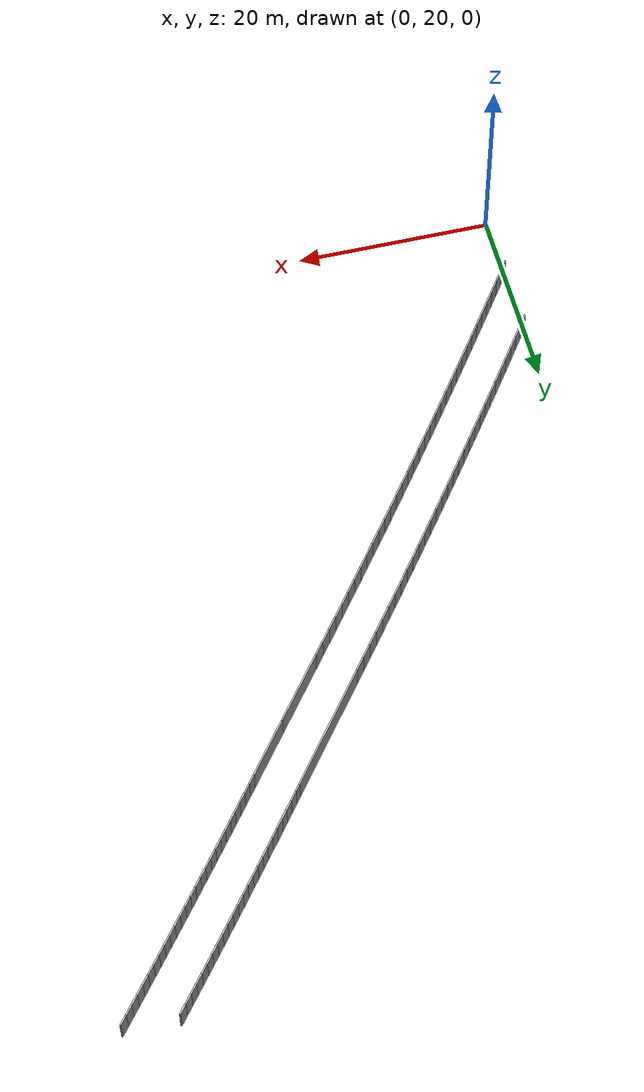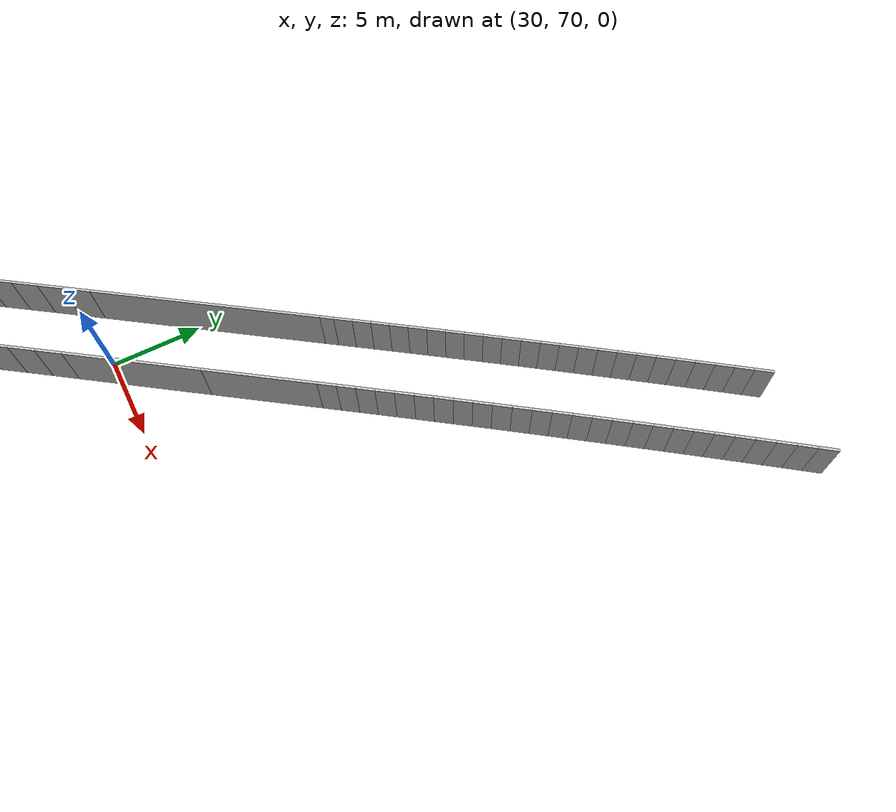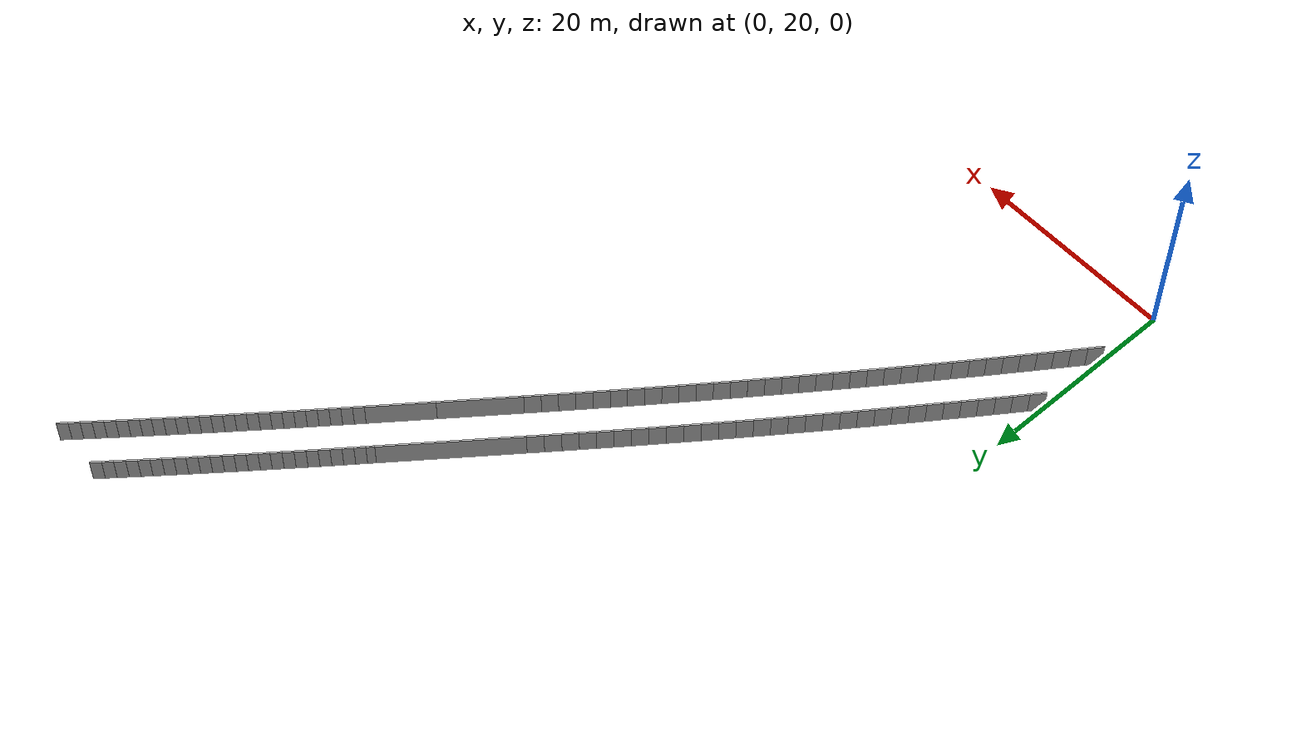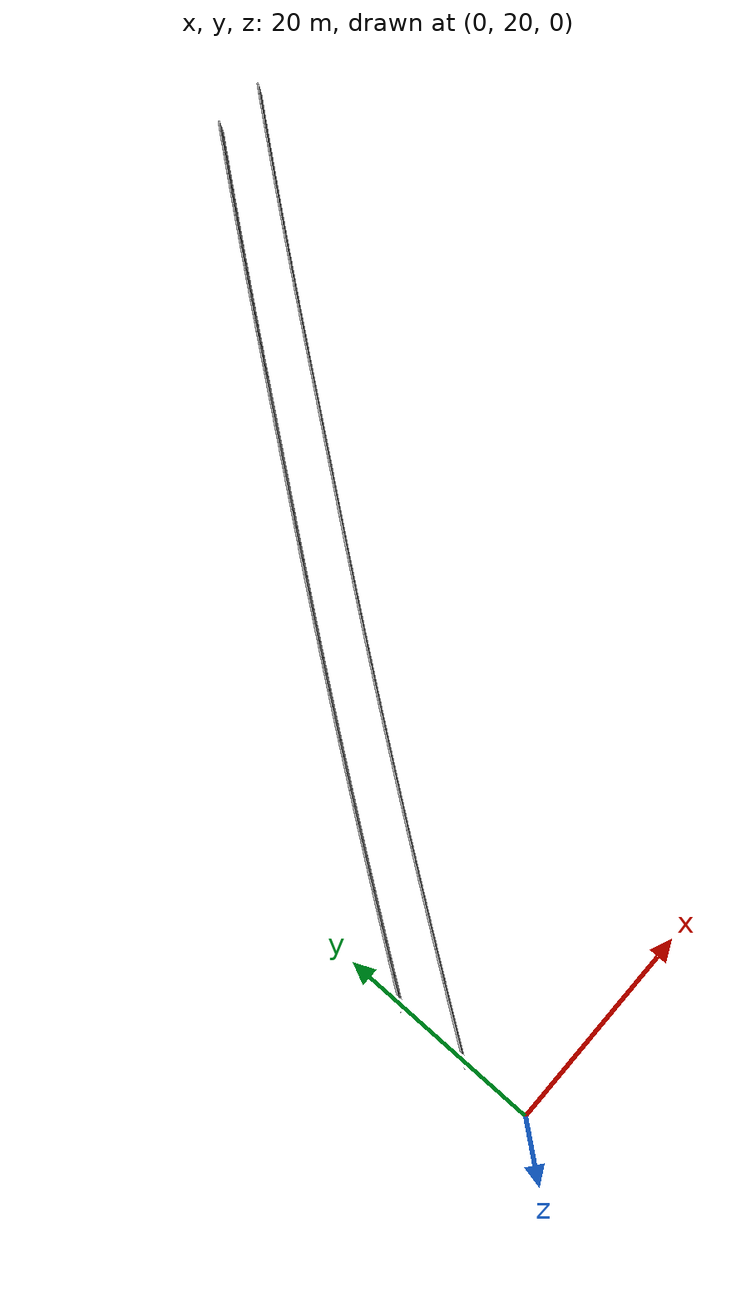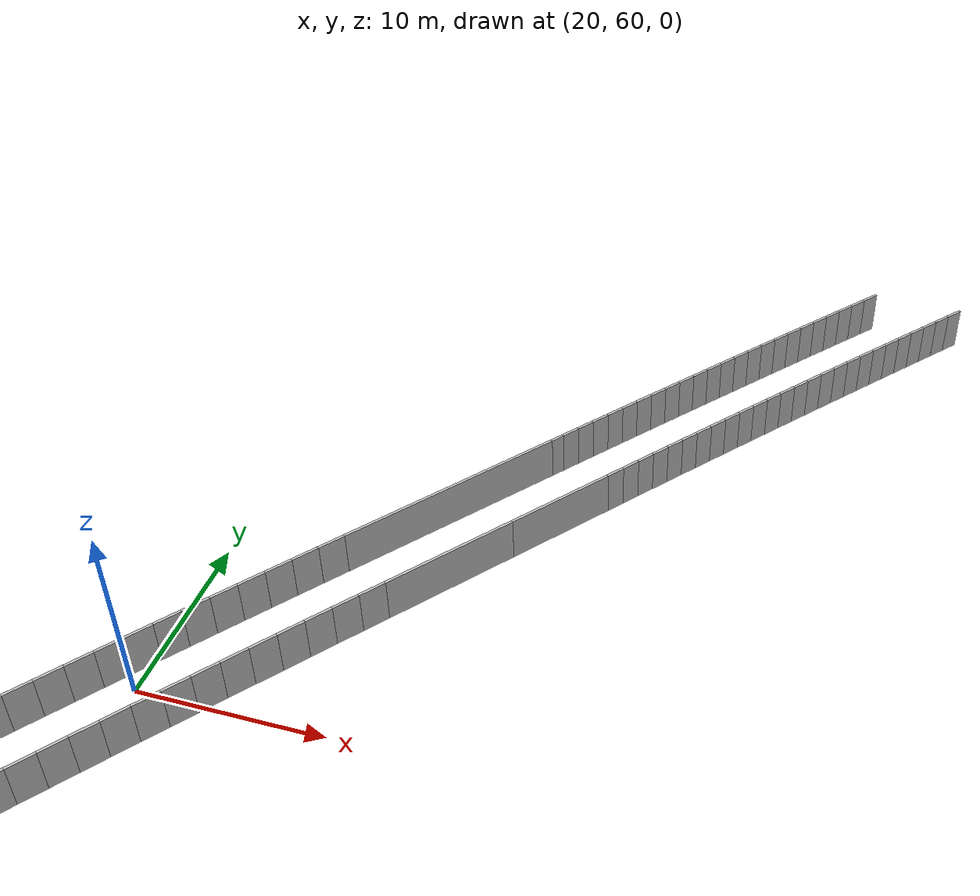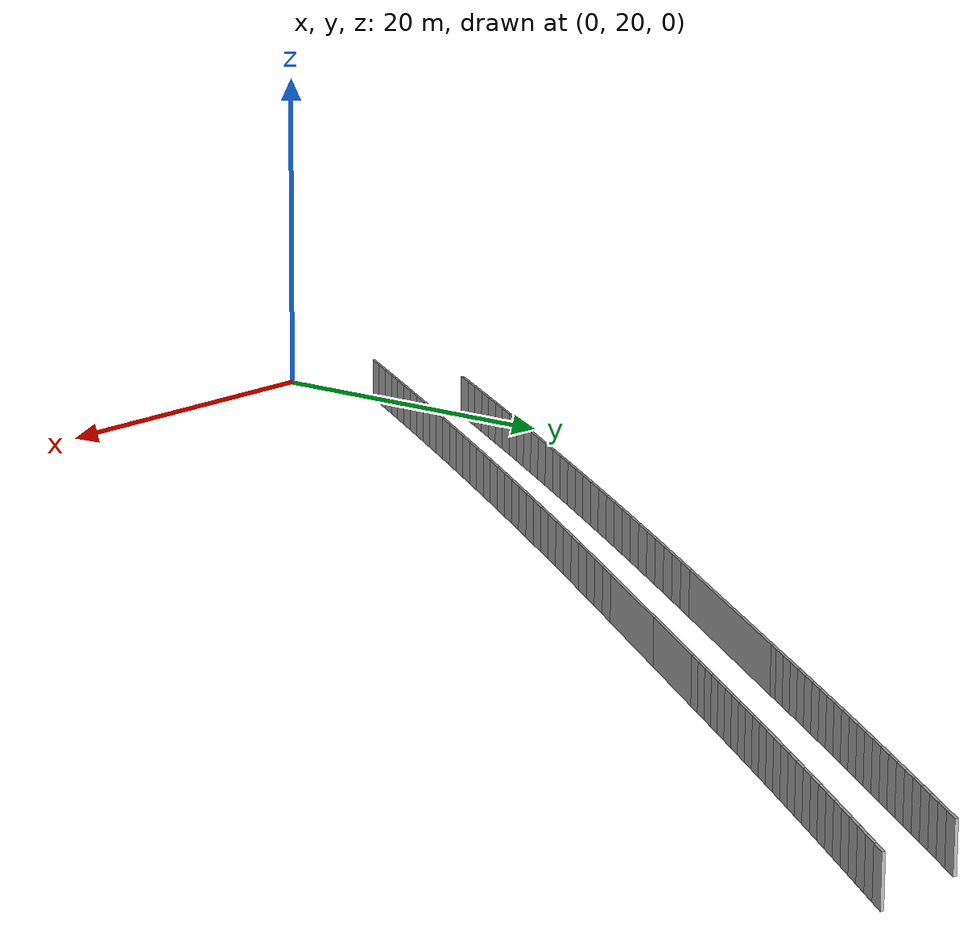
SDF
<sdf version="1.6">
 <model name="sps_0318">
  <static>1</static>
  <allow_auto_disable>0</allow_auto_disable>
  <link name="Wall298">
   <collision name="collision"><geometry><box><size>7.56129 0.15 2.5</size></box></geometry></collision>
   <visual name="visual">
    <geometry><box><size>7.56129 0.15 2.5</size></box></geometry>
    <transparency>0.0</transparency>
   </visual>
   <pose>32.1695 71.0881 1.25 0 -0 0.916836</pose>
  </link>
  <link name="Wall299">
   <collision name="collision"><geometry><box><size>6.16538 0.15 2.5</size></box></geometry></collision>
   <visual name="visual">
    <geometry><box><size>6.16538 0.15 2.5</size></box></geometry>
    <transparency>0.0</transparency>
   </visual>
   <pose>36.3447 76.5354 1.25 0 -0 0.916836</pose>
  </link>
  <link name="Wall442">
   <collision name="collision"><geometry><box><size>0.759106 0.15 2.5</size></box></geometry></collision>
   <visual name="visual">
    <geometry><box><size>0.759106 0.15 2.5</size></box></geometry>
    <transparency>0.0</transparency>
   </visual>
   <pose>34.7003 81.1949 1.25 0 0 -2.22476</pose>
  </link>
  <link name="Wall443">
   <collision name="collision"><geometry><box><size>12.9573 0.15 2.5</size></box></geometry></collision>
   <visual name="visual">
    <geometry><box><size>12.9573 0.15 2.5</size></box></geometry>
    <transparency>0.0</transparency>
   </visual>
   <pose>30.5283 75.7517 1.25 0 0 -2.22476</pose>
  </link>
  <link name="Wall4835">
   <collision name="collision"><geometry><box><size>1.4966 0.15 2.5</size></box></geometry></collision>
   <visual name="visual">
    <geometry><box><size>1.4966 0.15 2.5</size></box></geometry>
    <transparency>0.0</transparency>
   </visual>
   <pose>29.4143 67.4937 1.25 0 0 -2.22504</pose>
  </link>
  <link name="Wall4836">
   <collision name="collision"><geometry><box><size>1.49643 0.15 2.5</size></box></geometry></collision>
   <visual name="visual">
    <geometry><box><size>1.49643 0.15 2.5</size></box></geometry>
    <transparency>0.0</transparency>
   </visual>
   <pose>28.5045 66.3055 1.25 0 0 -2.22348</pose>
  </link>
  <link name="Wall4837">
   <collision name="collision"><geometry><box><size>1.49642 0.15 2.5</size></box></geometry></collision>
   <visual name="visual">
    <geometry><box><size>1.49642 0.15 2.5</size></box></geometry>
    <transparency>0.0</transparency>
   </visual>
   <pose>27.5967 65.1159 1.25 0 0 -2.22179</pose>
  </link>
  <link name="Wall4838">
   <collision name="collision"><geometry><box><size>1.49666 0.15 2.5</size></box></geometry></collision>
   <visual name="visual">
    <geometry><box><size>1.49666 0.15 2.5</size></box></geometry>
    <transparency>0.0</transparency>
   </visual>
   <pose>26.6908 63.9247 1.25 0 0 -2.22019</pose>
  </link>
  <link name="Wall4839">
   <collision name="collision"><geometry><box><size>1.49647 0.15 2.5</size></box></geometry></collision>
   <visual name="visual">
    <geometry><box><size>1.49647 0.15 2.5</size></box></geometry>
    <transparency>0.0</transparency>
   </visual>
   <pose>25.7866 62.7321 1.25 0 0 -2.21874</pose>
  </link>
  <link name="Wall4840">
   <collision name="collision"><geometry><box><size>1.49647 0.15 2.5</size></box></geometry></collision>
   <visual name="visual">
    <geometry><box><size>1.49647 0.15 2.5</size></box></geometry>
    <transparency>0.0</transparency>
   </visual>
   <pose>24.8845 61.5381 1.25 0 0 -2.21691</pose>
  </link>
  <link name="Wall4841">
   <collision name="collision"><geometry><box><size>1.49658 0.15 2.5</size></box></geometry></collision>
   <visual name="visual">
    <geometry><box><size>1.49658 0.15 2.5</size></box></geometry>
    <transparency>0.0</transparency>
   </visual>
   <pose>23.9843 60.3426 1.25 0 0 -2.21552</pose>
  </link>
  <link name="Wall4842">
   <collision name="collision"><geometry><box><size>1.49655 0.15 2.5</size></box></geometry></collision>
   <visual name="visual">
    <geometry><box><size>1.49655 0.15 2.5</size></box></geometry>
    <transparency>0.0</transparency>
   </visual>
   <pose>23.0859 59.1457 1.25 0 0 -2.21386</pose>
  </link>
  <link name="Wall4843">
   <collision name="collision"><geometry><box><size>1.49687 0.15 2.5</size></box></geometry></collision>
   <visual name="visual">
    <geometry><box><size>1.49687 0.15 2.5</size></box></geometry>
    <transparency>0.0</transparency>
   </visual>
   <pose>22.1894 57.9472 1.25 0 0 -2.21217</pose>
  </link>
  <link name="Wall4844">
   <collision name="collision"><geometry><box><size>1.49648 0.15 2.5</size></box></geometry></collision>
   <visual name="visual">
    <geometry><box><size>1.49648 0.15 2.5</size></box></geometry>
    <transparency>0.0</transparency>
   </visual>
   <pose>21.2949 56.7473 1.25 0 0 -2.21073</pose>
  </link>
  <link name="Wall4845">
   <collision name="collision"><geometry><box><size>1.49646 0.15 2.5</size></box></geometry></collision>
   <visual name="visual">
    <geometry><box><size>1.49646 0.15 2.5</size></box></geometry>
    <transparency>0.0</transparency>
   </visual>
   <pose>20.4022 55.5462 1.25 0 0 -2.20907</pose>
  </link>
  <link name="Wall4846">
   <collision name="collision"><geometry><box><size>1.49659 0.15 2.5</size></box></geometry></collision>
   <visual name="visual">
    <geometry><box><size>1.49659 0.15 2.5</size></box></geometry>
    <transparency>0.0</transparency>
   </visual>
   <pose>19.5114 54.3437 1.25 0 0 -2.20768</pose>
  </link>
  <link name="Wall4847">
   <collision name="collision"><geometry><box><size>1.49653 0.15 2.5</size></box></geometry></collision>
   <visual name="visual">
    <geometry><box><size>1.49653 0.15 2.5</size></box></geometry>
    <transparency>0.0</transparency>
   </visual>
   <pose>18.6226 53.1397 1.25 0 0 -2.20584</pose>
  </link>
  <link name="Wall4848">
   <collision name="collision"><geometry><box><size>1.49646 0.15 2.5</size></box></geometry></collision>
   <visual name="visual">
    <geometry><box><size>1.49646 0.15 2.5</size></box></geometry>
    <transparency>0.0</transparency>
   </visual>
   <pose>17.7357 51.9343 1.25 0 0 -2.2044</pose>
  </link>
  <link name="Wall4849">
   <collision name="collision"><geometry><box><size>1.49663 0.15 2.5</size></box></geometry></collision>
   <visual name="visual">
    <geometry><box><size>1.49663 0.15 2.5</size></box></geometry>
    <transparency>0.0</transparency>
   </visual>
   <pose>16.8507 50.7275 1.25 0 0 -2.2027</pose>
  </link>
  <link name="Wall4850">
   <collision name="collision"><geometry><box><size>1.49638 0.15 2.5</size></box></geometry></collision>
   <visual name="visual">
    <geometry><box><size>1.49638 0.15 2.5</size></box></geometry>
    <transparency>0.0</transparency>
   </visual>
   <pose>15.9676 49.5193 1.25 0 0 -2.20116</pose>
  </link>
  <link name="Wall4851">
   <collision name="collision"><geometry><box><size>1.49655 0.15 2.5</size></box></geometry></collision>
   <visual name="visual">
    <geometry><box><size>1.49655 0.15 2.5</size></box></geometry>
    <transparency>0.0</transparency>
   </visual>
   <pose>15.0864 48.3098 1.25 0 0 -2.19971</pose>
  </link>
  <link name="Wall4852">
   <collision name="collision"><geometry><box><size>1.49657 0.15 2.5</size></box></geometry></collision>
   <visual name="visual">
    <geometry><box><size>1.49657 0.15 2.5</size></box></geometry>
    <transparency>0.0</transparency>
   </visual>
   <pose>14.2071 47.0988 1.25 0 0 -2.19793</pose>
  </link>
  <link name="Wall4853">
   <collision name="collision"><geometry><box><size>1.49641 0.15 2.5</size></box></geometry></collision>
   <visual name="visual">
    <geometry><box><size>1.49641 0.15 2.5</size></box></geometry>
    <transparency>0.0</transparency>
   </visual>
   <pose>13.3299 45.8864 1.25 0 0 -2.19646</pose>
  </link>
  <link name="Wall4854">
   <collision name="collision"><geometry><box><size>1.49663 0.15 2.5</size></box></geometry></collision>
   <visual name="visual">
    <geometry><box><size>1.49663 0.15 2.5</size></box></geometry>
    <transparency>0.0</transparency>
   </visual>
   <pose>12.4545 44.6726 1.25 0 0 -2.19479</pose>
  </link>
  <link name="Wall4855">
   <collision name="collision"><geometry><box><size>1.49652 0.15 2.5</size></box></geometry></collision>
   <visual name="visual">
    <geometry><box><size>1.49652 0.15 2.5</size></box></geometry>
    <transparency>0.0</transparency>
   </visual>
   <pose>11.581 43.4574 1.25 0 0 -2.19328</pose>
  </link>
  <link name="Wall4856">
   <collision name="collision"><geometry><box><size>1.49667 0.15 2.5</size></box></geometry></collision>
   <visual name="visual">
    <geometry><box><size>1.49667 0.15 2.5</size></box></geometry>
    <transparency>0.0</transparency>
   </visual>
   <pose>10.7093 42.2409 1.25 0 0 -2.19181</pose>
  </link>
  <link name="Wall4857">
   <collision name="collision"><geometry><box><size>1.4963 0.15 2.5</size></box></geometry></collision>
   <visual name="visual">
    <geometry><box><size>1.4963 0.15 2.5</size></box></geometry>
    <transparency>0.0</transparency>
   </visual>
   <pose>9.83953 41.0231 1.25 0 0 -2.19013</pose>
  </link>
  <link name="Wall4858">
   <collision name="collision"><geometry><box><size>1.49653 0.15 2.5</size></box></geometry></collision>
   <visual name="visual">
    <geometry><box><size>1.49653 0.15 2.5</size></box></geometry>
    <transparency>0.0</transparency>
   </visual>
   <pose>8.97185 39.8039 1.25 0 0 -2.18852</pose>
  </link>
  <link name="Wall4859">
   <collision name="collision"><geometry><box><size>1.4967 0.15 2.5</size></box></geometry></collision>
   <visual name="visual">
    <geometry><box><size>1.4967 0.15 2.5</size></box></geometry>
    <transparency>0.0</transparency>
   </visual>
   <pose>8.10598 38.5832 1.25 0 0 -2.18699</pose>
  </link>
  <link name="Wall4860">
   <collision name="collision"><geometry><box><size>1.49641 0.15 2.5</size></box></geometry></collision>
   <visual name="visual">
    <geometry><box><size>1.49641 0.15 2.5</size></box></geometry>
    <transparency>0.0</transparency>
   </visual>
   <pose>7.24206 37.3612 1.25 0 0 -2.18537</pose>
  </link>
  <link name="Wall4861">
   <collision name="collision"><geometry><box><size>1.49662 0.15 2.5</size></box></geometry></collision>
   <visual name="visual">
    <geometry><box><size>1.49662 0.15 2.5</size></box></geometry>
    <transparency>0.0</transparency>
   </visual>
   <pose>6.38015 36.1378 1.25 0 0 -2.18373</pose>
  </link>
  <link name="Wall4862">
   <collision name="collision"><geometry><box><size>1.4965 0.15 2.5</size></box></geometry></collision>
   <visual name="visual">
    <geometry><box><size>1.4965 0.15 2.5</size></box></geometry>
    <transparency>0.0</transparency>
   </visual>
   <pose>5.52016 34.913 1.25 0 0 -2.18219</pose>
  </link>
  <link name="Wall4863">
   <collision name="collision"><geometry><box><size>1.49634 0.15 2.5</size></box></geometry></collision>
   <visual name="visual">
    <geometry><box><size>1.49634 0.15 2.5</size></box></geometry>
    <transparency>0.0</transparency>
   </visual>
   <pose>4.66216 33.687 1.25 0 0 -2.18062</pose>
  </link>
  <link name="Wall4864">
   <collision name="collision"><geometry><box><size>1.49663 0.15 2.5</size></box></geometry></collision>
   <visual name="visual">
    <geometry><box><size>1.49663 0.15 2.5</size></box></geometry>
    <transparency>0.0</transparency>
   </visual>
   <pose>3.80605 32.4596 1.25 0 0 -2.17905</pose>
  </link>
  <link name="Wall4865">
   <collision name="collision"><geometry><box><size>1.49659 0.15 2.5</size></box></geometry></collision>
   <visual name="visual">
    <geometry><box><size>1.49659 0.15 2.5</size></box></geometry>
    <transparency>0.0</transparency>
   </visual>
   <pose>2.95183 31.2307 1.25 0 0 -2.17743</pose>
  </link>
  <link name="Wall4866">
   <collision name="collision"><geometry><box><size>1.49649 0.15 2.5</size></box></geometry></collision>
   <visual name="visual">
    <geometry><box><size>1.49649 0.15 2.5</size></box></geometry>
    <transparency>0.0</transparency>
   </visual>
   <pose>2.09963 30.0005 1.25 0 0 -2.17584</pose>
  </link>
  <link name="Wall4867">
   <collision name="collision"><geometry><box><size>1.49645 0.15 2.5</size></box></geometry></collision>
   <visual name="visual">
    <geometry><box><size>1.49645 0.15 2.5</size></box></geometry>
    <transparency>0.0</transparency>
   </visual>
   <pose>1.24944 28.769 1.25 0 0 -2.17422</pose>
  </link>
  <link name="Wall4868">
   <collision name="collision"><geometry><box><size>1.49666 0.15 2.5</size></box></geometry></collision>
   <visual name="visual">
    <geometry><box><size>1.49666 0.15 2.5</size></box></geometry>
    <transparency>0.0</transparency>
   </visual>
   <pose>0.401145 27.5361 1.25 0 0 -2.17269</pose>
  </link>
  <link name="Wall6631">
   <collision name="collision"><geometry><box><size>1.5031 0.15 2.5</size></box></geometry></collision>
   <visual name="visual">
    <geometry><box><size>1.5031 0.15 2.5</size></box></geometry>
    <transparency>0.0</transparency>
   </visual>
   <pose>26.1298 70.0133 1.25 0 0 -2.22494</pose>
  </link>
  <link name="Wall6632">
   <collision name="collision"><geometry><box><size>1.50314 0.15 2.5</size></box></geometry></collision>
   <visual name="visual">
    <geometry><box><size>1.50314 0.15 2.5</size></box></geometry>
    <transparency>0.0</transparency>
   </visual>
   <pose>25.2161 68.8197 1.25 0 0 -2.22324</pose>
  </link>
  <link name="Wall6633">
   <collision name="collision"><geometry><box><size>1.503 0.15 2.5</size></box></geometry></collision>
   <visual name="visual">
    <geometry><box><size>1.503 0.15 2.5</size></box></geometry>
    <transparency>0.0</transparency>
   </visual>
   <pose>24.3045 67.6247 1.25 0 0 -2.22178</pose>
  </link>
  <link name="Wall6634">
   <collision name="collision"><geometry><box><size>1.50319 0.15 2.5</size></box></geometry></collision>
   <visual name="visual">
    <geometry><box><size>1.50319 0.15 2.5</size></box></geometry>
    <transparency>0.0</transparency>
   </visual>
   <pose>23.3946 66.4283 1.25 0 0 -2.2202</pose>
  </link>
  <link name="Wall6635">
   <collision name="collision"><geometry><box><size>1.50327 0.15 2.5</size></box></geometry></collision>
   <visual name="visual">
    <geometry><box><size>1.50327 0.15 2.5</size></box></geometry>
    <transparency>0.0</transparency>
   </visual>
   <pose>22.4866 65.2303 1.25 0 0 -2.21853</pose>
  </link>
  <link name="Wall6636">
   <collision name="collision"><geometry><box><size>1.50309 0.15 2.5</size></box></geometry></collision>
   <visual name="visual">
    <geometry><box><size>1.50309 0.15 2.5</size></box></geometry>
    <transparency>0.0</transparency>
   </visual>
   <pose>21.5804 64.0309 1.25 0 0 -2.21709</pose>
  </link>
  <link name="Wall6637">
   <collision name="collision"><geometry><box><size>1.50305 0.15 2.5</size></box></geometry></collision>
   <visual name="visual">
    <geometry><box><size>1.50305 0.15 2.5</size></box></geometry>
    <transparency>0.0</transparency>
   </visual>
   <pose>20.6762 62.8302 1.25 0 0 -2.21543</pose>
  </link>
  <link name="Wall6638">
   <collision name="collision"><geometry><box><size>1.50322 0.15 2.5</size></box></geometry></collision>
   <visual name="visual">
    <geometry><box><size>1.50322 0.15 2.5</size></box></geometry>
    <transparency>0.0</transparency>
   </visual>
   <pose>19.7739 61.628 1.25 0 0 -2.21383</pose>
  </link>
  <link name="Wall6639">
   <collision name="collision"><geometry><box><size>1.50314 0.15 2.5</size></box></geometry></collision>
   <visual name="visual">
    <geometry><box><size>1.50314 0.15 2.5</size></box></geometry>
    <transparency>0.0</transparency>
   </visual>
   <pose>18.8735 60.4244 1.25 0 0 -2.2124</pose>
  </link>
  <link name="Wall6640">
   <collision name="collision"><geometry><box><size>1.5029 0.15 2.5</size></box></geometry></collision>
   <visual name="visual">
    <geometry><box><size>1.5029 0.15 2.5</size></box></geometry>
    <transparency>0.0</transparency>
   </visual>
   <pose>17.975 59.2195 1.25 0 0 -2.21069</pose>
  </link>
  <link name="Wall6641">
   <collision name="collision"><geometry><box><size>1.50302 0.15 2.5</size></box></geometry></collision>
   <visual name="visual">
    <geometry><box><size>1.50302 0.15 2.5</size></box></geometry>
    <transparency>0.0</transparency>
   </visual>
   <pose>17.0785 58.0132 1.25 0 0 -2.20916</pose>
  </link>
  <link name="Wall6642">
   <collision name="collision"><geometry><box><size>1.50321 0.15 2.5</size></box></geometry></collision>
   <visual name="visual">
    <geometry><box><size>1.50321 0.15 2.5</size></box></geometry>
    <transparency>0.0</transparency>
   </visual>
   <pose>16.1837 56.8054 1.25 0 0 -2.20756</pose>
  </link>
  <link name="Wall6643">
   <collision name="collision"><geometry><box><size>1.50309 0.15 2.5</size></box></geometry></collision>
   <visual name="visual">
    <geometry><box><size>1.50309 0.15 2.5</size></box></geometry>
    <transparency>0.0</transparency>
   </visual>
   <pose>15.2909 55.5961 1.25 0 0 -2.20595</pose>
  </link>
  <link name="Wall6644">
   <collision name="collision"><geometry><box><size>1.50308 0.15 2.5</size></box></geometry></collision>
   <visual name="visual">
    <geometry><box><size>1.50308 0.15 2.5</size></box></geometry>
    <transparency>0.0</transparency>
   </visual>
   <pose>14.4002 54.3854 1.25 0 0 -2.20429</pose>
  </link>
  <link name="Wall6645">
   <collision name="collision"><geometry><box><size>1.50311 0.15 2.5</size></box></geometry></collision>
   <visual name="visual">
    <geometry><box><size>1.50311 0.15 2.5</size></box></geometry>
    <transparency>0.0</transparency>
   </visual>
   <pose>13.5113 53.1733 1.25 0 0 -2.20281</pose>
  </link>
  <link name="Wall6646">
   <collision name="collision"><geometry><box><size>1.50314 0.15 2.5</size></box></geometry></collision>
   <visual name="visual">
    <geometry><box><size>1.50314 0.15 2.5</size></box></geometry>
    <transparency>0.0</transparency>
   </visual>
   <pose>12.6243 51.9598 1.25 0 0 -2.20119</pose>
  </link>
  <link name="Wall6647">
   <collision name="collision"><geometry><box><size>1.50286 0.15 2.5</size></box></geometry></collision>
   <visual name="visual">
    <geometry><box><size>1.50286 0.15 2.5</size></box></geometry>
    <transparency>0.0</transparency>
   </visual>
   <pose>11.7392 50.745 1.25 0 0 -2.19962</pose>
  </link>
  <link name="Wall6648">
   <collision name="collision"><geometry><box><size>1.503 0.15 2.5</size></box></geometry></collision>
   <visual name="visual">
    <geometry><box><size>1.503 0.15 2.5</size></box></geometry>
    <transparency>0.0</transparency>
   </visual>
   <pose>10.8563 49.5288 1.25 0 0 -2.19795</pose>
  </link>
  <link name="Wall6649">
   <collision name="collision"><geometry><box><size>1.50317 0.15 2.5</size></box></geometry></collision>
   <visual name="visual">
    <geometry><box><size>1.50317 0.15 2.5</size></box></geometry>
    <transparency>0.0</transparency>
   </visual>
   <pose>9.97506 48.3111 1.25 0 0 -2.19651</pose>
  </link>
  <link name="Wall6650">
   <collision name="collision"><geometry><box><size>1.50321 0.15 2.5</size></box></geometry></collision>
   <visual name="visual">
    <geometry><box><size>1.50321 0.15 2.5</size></box></geometry>
    <transparency>0.0</transparency>
   </visual>
   <pose>9.09566 47.092 1.25 0 0 -2.19489</pose>
  </link>
  <link name="Wall6651">
   <collision name="collision"><geometry><box><size>1.50313 0.15 2.5</size></box></geometry></collision>
   <visual name="visual">
    <geometry><box><size>1.50313 0.15 2.5</size></box></geometry>
    <transparency>0.0</transparency>
   </visual>
   <pose>8.21825 45.8715 1.25 0 0 -2.19328</pose>
  </link>
  <link name="Wall6652">
   <collision name="collision"><geometry><box><size>1.50295 0.15 2.5</size></box></geometry></collision>
   <visual name="visual">
    <geometry><box><size>1.50295 0.15 2.5</size></box></geometry>
    <transparency>0.0</transparency>
   </visual>
   <pose>7.34286 44.6497 1.25 0 0 -2.19172</pose>
  </link>
  <link name="Wall6653">
   <collision name="collision"><geometry><box><size>1.50321 0.15 2.5</size></box></geometry></collision>
   <visual name="visual">
    <geometry><box><size>1.50321 0.15 2.5</size></box></geometry>
    <transparency>0.0</transparency>
   </visual>
   <pose>6.46935 43.4265 1.25 0 0 -2.19014</pose>
  </link>
  <link name="Wall6654">
   <collision name="collision"><geometry><box><size>1.50299 0.15 2.5</size></box></geometry></collision>
   <visual name="visual">
    <geometry><box><size>1.50299 0.15 2.5</size></box></geometry>
    <transparency>0.0</transparency>
   </visual>
   <pose>5.59774 42.2019 1.25 0 0 -2.18861</pose>
  </link>
  <link name="Wall6655">
   <collision name="collision"><geometry><box><size>1.50317 0.15 2.5</size></box></geometry></collision>
   <visual name="visual">
    <geometry><box><size>1.50317 0.15 2.5</size></box></geometry>
    <transparency>0.0</transparency>
   </visual>
   <pose>4.72814 40.9759 1.25 0 0 -2.18688</pose>
  </link>
  <link name="Wall6656">
   <collision name="collision"><geometry><box><size>1.503 0.15 2.5</size></box></geometry></collision>
   <visual name="visual">
    <geometry><box><size>1.503 0.15 2.5</size></box></geometry>
    <transparency>0.0</transparency>
   </visual>
   <pose>3.86056 39.7485 1.25 0 0 -2.18531</pose>
  </link>
  <link name="Wall6657">
   <collision name="collision"><geometry><box><size>1.50308 0.15 2.5</size></box></geometry></collision>
   <visual name="visual">
    <geometry><box><size>1.50308 0.15 2.5</size></box></geometry>
    <transparency>0.0</transparency>
   </visual>
   <pose>2.99486 38.5198 1.25 0 0 -2.18384</pose>
  </link>
  <link name="Wall6658">
   <collision name="collision"><geometry><box><size>1.50312 0.15 2.5</size></box></geometry></collision>
   <visual name="visual">
    <geometry><box><size>1.50312 0.15 2.5</size></box></geometry>
    <transparency>0.0</transparency>
   </visual>
   <pose>2.13106 37.2897 1.25 0 0 -2.18218</pose>
  </link>
  <link name="Wall6659">
   <collision name="collision"><geometry><box><size>1.5031 0.15 2.5</size></box></geometry></collision>
   <visual name="visual">
    <geometry><box><size>1.5031 0.15 2.5</size></box></geometry>
    <transparency>0.0</transparency>
   </visual>
   <pose>1.26925 36.0582 1.25 0 0 -2.1806</pose>
  </link>
  <link name="Wall6660">
   <collision name="collision"><geometry><box><size>1.50296 0.15 2.5</size></box></geometry></collision>
   <visual name="visual">
    <geometry><box><size>1.50296 0.15 2.5</size></box></geometry>
    <transparency>0.0</transparency>
   </visual>
   <pose>0.409538 34.8253 1.25 0 0 -2.17884</pose>
  </link>
  <link name="Wall10031">
   <collision name="collision"><geometry><box><size>1.01905 0.15 2.5</size></box></geometry></collision>
   <visual name="visual">
    <geometry><box><size>1.01905 0.15 2.5</size></box></geometry>
    <transparency>0.0</transparency>
   </visual>
   <pose>49.0699 99.5492 1.25 0 0 -2.24731</pose>
  </link>
  <link name="Wall10032">
   <collision name="collision"><geometry><box><size>1.01912 0.15 2.5</size></box></geometry></collision>
   <visual name="visual">
    <geometry><box><size>1.01912 0.15 2.5</size></box></geometry>
    <transparency>0.0</transparency>
   </visual>
   <pose>48.4323 98.7542 1.25 0 0 -2.24625</pose>
  </link>
  <link name="Wall10033">
   <collision name="collision"><geometry><box><size>1.01915 0.15 2.5</size></box></geometry></collision>
   <visual name="visual">
    <geometry><box><size>1.01915 0.15 2.5</size></box></geometry>
    <transparency>0.0</transparency>
   </visual>
   <pose>47.7955 97.9585 1.25 0 0 -2.24523</pose>
  </link>
  <link name="Wall10034">
   <collision name="collision"><geometry><box><size>1.01912 0.15 2.5</size></box></geometry></collision>
   <visual name="visual">
    <geometry><box><size>1.01912 0.15 2.5</size></box></geometry>
    <transparency>0.0</transparency>
   </visual>
   <pose>47.1596 97.1621 1.25 0 0 -2.24395</pose>
  </link>
  <link name="Wall10035">
   <collision name="collision"><geometry><box><size>1.01929 0.15 2.5</size></box></geometry></collision>
   <visual name="visual">
    <geometry><box><size>1.01929 0.15 2.5</size></box></geometry>
    <transparency>0.0</transparency>
   </visual>
   <pose>46.5246 96.3649 1.25 0 0 -2.2429</pose>
  </link>
  <link name="Wall10036">
   <collision name="collision"><geometry><box><size>1.01938 0.15 2.5</size></box></geometry></collision>
   <visual name="visual">
    <geometry><box><size>1.01938 0.15 2.5</size></box></geometry>
    <transparency>0.0</transparency>
   </visual>
   <pose>45.8903 95.5669 1.25 0 0 -2.24176</pose>
  </link>
  <link name="Wall10037">
   <collision name="collision"><geometry><box><size>1.01917 0.15 2.5</size></box></geometry></collision>
   <visual name="visual">
    <geometry><box><size>1.01917 0.15 2.5</size></box></geometry>
    <transparency>0.0</transparency>
   </visual>
   <pose>45.2569 94.7683 1.25 0 0 -2.24093</pose>
  </link>
  <link name="Wall10038">
   <collision name="collision"><geometry><box><size>1.01909 0.15 2.5</size></box></geometry></collision>
   <visual name="visual">
    <geometry><box><size>1.01909 0.15 2.5</size></box></geometry>
    <transparency>0.0</transparency>
   </visual>
   <pose>44.6244 93.9692 1.25 0 0 -2.23977</pose>
  </link>
  <link name="Wall10039">
   <collision name="collision"><geometry><box><size>1.01914 0.15 2.5</size></box></geometry></collision>
   <visual name="visual">
    <geometry><box><size>1.01914 0.15 2.5</size></box></geometry>
    <transparency>0.0</transparency>
   </visual>
   <pose>43.9929 93.1694 1.25 0 0 -2.23866</pose>
  </link>
  <link name="Wall10040">
   <collision name="collision"><geometry><box><size>1.01936 0.15 2.5</size></box></geometry></collision>
   <visual name="visual">
    <geometry><box><size>1.01936 0.15 2.5</size></box></geometry>
    <transparency>0.0</transparency>
   </visual>
   <pose>43.3621 92.3688 1.25 0 0 -2.23758</pose>
  </link>
  <link name="Wall10041">
   <collision name="collision"><geometry><box><size>1.019 0.15 2.5</size></box></geometry></collision>
   <visual name="visual">
    <geometry><box><size>1.019 0.15 2.5</size></box></geometry>
    <transparency>0.0</transparency>
   </visual>
   <pose>42.7321 91.5676 1.25 0 0 -2.23656</pose>
  </link>
  <link name="Wall10042">
   <collision name="collision"><geometry><box><size>1.01914 0.15 2.5</size></box></geometry></collision>
   <visual name="visual">
    <geometry><box><size>1.01914 0.15 2.5</size></box></geometry>
    <transparency>0.0</transparency>
   </visual>
   <pose>42.1031 90.7658 1.25 0 0 -2.23546</pose>
  </link>
  <link name="Wall10043">
   <collision name="collision"><geometry><box><size>1.01927 0.15 2.5</size></box></geometry></collision>
   <visual name="visual">
    <geometry><box><size>1.01927 0.15 2.5</size></box></geometry>
    <transparency>0.0</transparency>
   </visual>
   <pose>41.4749 89.9632 1.25 0 0 -2.23437</pose>
  </link>
  <link name="Wall10044">
   <collision name="collision"><geometry><box><size>1.01916 0.15 2.5</size></box></geometry></collision>
   <visual name="visual">
    <geometry><box><size>1.01916 0.15 2.5</size></box></geometry>
    <transparency>0.0</transparency>
   </visual>
   <pose>40.8476 89.1599 1.25 0 0 -2.23316</pose>
  </link>
  <link name="Wall10045">
   <collision name="collision"><geometry><box><size>1.01915 0.15 2.5</size></box></geometry></collision>
   <visual name="visual">
    <geometry><box><size>1.01915 0.15 2.5</size></box></geometry>
    <transparency>0.0</transparency>
   </visual>
   <pose>40.2212 88.356 1.25 0 0 -2.23226</pose>
  </link>
  <link name="Wall10046">
   <collision name="collision"><geometry><box><size>1.01906 0.15 2.5</size></box></geometry></collision>
   <visual name="visual">
    <geometry><box><size>1.01906 0.15 2.5</size></box></geometry>
    <transparency>0.0</transparency>
   </visual>
   <pose>39.5956 87.5515 1.25 0 0 -2.23127</pose>
  </link>
  <link name="Wall10047">
   <collision name="collision"><geometry><box><size>1.01913 0.15 2.5</size></box></geometry></collision>
   <visual name="visual">
    <geometry><box><size>1.01913 0.15 2.5</size></box></geometry>
    <transparency>0.0</transparency>
   </visual>
   <pose>38.9709 86.7463 1.25 0 0 -2.23</pose>
  </link>
  <link name="Wall10048">
   <collision name="collision"><geometry><box><size>1.01924 0.15 2.5</size></box></geometry></collision>
   <visual name="visual">
    <geometry><box><size>1.01924 0.15 2.5</size></box></geometry>
    <transparency>0.0</transparency>
   </visual>
   <pose>38.347 85.9404 1.25 0 0 -2.22916</pose>
  </link>
  <link name="Wall10049">
   <collision name="collision"><geometry><box><size>1.01898 0.15 2.5</size></box></geometry></collision>
   <visual name="visual">
    <geometry><box><size>1.01898 0.15 2.5</size></box></geometry>
    <transparency>0.0</transparency>
   </visual>
   <pose>37.7241 85.1339 1.25 0 0 -2.22785</pose>
  </link>
  <link name="Wall10050">
   <collision name="collision"><geometry><box><size>1.01927 0.15 2.5</size></box></geometry></collision>
   <visual name="visual">
    <geometry><box><size>1.01927 0.15 2.5</size></box></geometry>
    <transparency>0.0</transparency>
   </visual>
   <pose>37.102 84.3267 1.25 0 0 -2.22694</pose>
  </link>
  <link name="Wall10051">
   <collision name="collision"><geometry><box><size>1.01922 0.15 2.5</size></box></geometry></collision>
   <visual name="visual">
    <geometry><box><size>1.01922 0.15 2.5</size></box></geometry>
    <transparency>0.0</transparency>
   </visual>
   <pose>36.4806 83.5187 1.25 0 0 -2.2257</pose>
  </link>
  <link name="Wall10052">
   <collision name="collision"><geometry><box><size>1.01901 0.15 2.5</size></box></geometry></collision>
   <visual name="visual">
    <geometry><box><size>1.01901 0.15 2.5</size></box></geometry>
    <transparency>0.0</transparency>
   </visual>
   <pose>35.8603 82.7101 1.25 0 0 -2.22465</pose>
  </link>
  <link name="Wall10053">
   <collision name="collision"><geometry><box><size>1.01922 0.15 2.5</size></box></geometry></collision>
   <visual name="visual">
    <geometry><box><size>1.01922 0.15 2.5</size></box></geometry>
    <transparency>0.0</transparency>
   </visual>
   <pose>35.2408 81.9009 1.25 0 0 -2.22374</pose>
  </link>
  <link name="Wall10073">
   <collision name="collision"><geometry><box><size>1.0141 0.15 2.5</size></box></geometry></collision>
   <visual name="visual">
    <geometry><box><size>1.0141 0.15 2.5</size></box></geometry>
    <transparency>0.0</transparency>
   </visual>
   <pose>54.197 99.3175 1.25 0 0 -2.25045</pose>
  </link>
  <link name="Wall10074">
   <collision name="collision"><geometry><box><size>1.01438 0.15 2.5</size></box></geometry></collision>
   <visual name="visual">
    <geometry><box><size>1.01438 0.15 2.5</size></box></geometry>
    <transparency>0.0</transparency>
   </visual>
   <pose>53.5599 98.5283 1.25 0 0 -2.24946</pose>
  </link>
  <link name="Wall10075">
   <collision name="collision"><geometry><box><size>1.01413 0.15 2.5</size></box></geometry></collision>
   <visual name="visual">
    <geometry><box><size>1.01413 0.15 2.5</size></box></geometry>
    <transparency>0.0</transparency>
   </visual>
   <pose>52.9237 97.7384 1.25 0 0 -2.24819</pose>
  </link>
  <link name="Wall10076">
   <collision name="collision"><geometry><box><size>1.01406 0.15 2.5</size></box></geometry></collision>
   <visual name="visual">
    <geometry><box><size>1.01406 0.15 2.5</size></box></geometry>
    <transparency>0.0</transparency>
   </visual>
   <pose>52.2884 96.9479 1.25 0 0 -2.24724</pose>
  </link>
  <link name="Wall10077">
   <collision name="collision"><geometry><box><size>1.0142 0.15 2.5</size></box></geometry></collision>
   <visual name="visual">
    <geometry><box><size>1.0142 0.15 2.5</size></box></geometry>
    <transparency>0.0</transparency>
   </visual>
   <pose>51.654 96.1567 1.25 0 0 -2.24605</pose>
  </link>
  <link name="Wall10078">
   <collision name="collision"><geometry><box><size>1.01413 0.15 2.5</size></box></geometry></collision>
   <visual name="visual">
    <geometry><box><size>1.01413 0.15 2.5</size></box></geometry>
    <transparency>0.0</transparency>
   </visual>
   <pose>51.0205 95.3648 1.25 0 0 -2.2451</pose>
  </link>
  <link name="Wall10079">
   <collision name="collision"><geometry><box><size>1.01434 0.15 2.5</size></box></geometry></collision>
   <visual name="visual">
    <geometry><box><size>1.01434 0.15 2.5</size></box></geometry>
    <transparency>0.0</transparency>
   </visual>
   <pose>50.3877 94.5722 1.25 0 0 -2.24401</pose>
  </link>
  <link name="Wall10080">
   <collision name="collision"><geometry><box><size>1.01394 0.15 2.5</size></box></geometry></collision>
   <visual name="visual">
    <geometry><box><size>1.01394 0.15 2.5</size></box></geometry>
    <transparency>0.0</transparency>
   </visual>
   <pose>49.7558 93.779 1.25 0 0 -2.24294</pose>
  </link>
  <link name="Wall10081">
   <collision name="collision"><geometry><box><size>1.01425 0.15 2.5</size></box></geometry></collision>
   <visual name="visual">
    <geometry><box><size>1.01425 0.15 2.5</size></box></geometry>
    <transparency>0.0</transparency>
   </visual>
   <pose>49.1248 92.9851 1.25 0 0 -2.24178</pose>
  </link>
  <link name="Wall10082">
   <collision name="collision"><geometry><box><size>1.01424 0.15 2.5</size></box></geometry></collision>
   <visual name="visual">
    <geometry><box><size>1.01424 0.15 2.5</size></box></geometry>
    <transparency>0.0</transparency>
   </visual>
   <pose>48.4946 92.1904 1.25 0 0 -2.24079</pose>
  </link>
  <link name="Wall10083">
   <collision name="collision"><geometry><box><size>1.01423 0.15 2.5</size></box></geometry></collision>
   <visual name="visual">
    <geometry><box><size>1.01423 0.15 2.5</size></box></geometry>
    <transparency>0.0</transparency>
   </visual>
   <pose>47.8652 91.3951 1.25 0 0 -2.23972</pose>
  </link>
  <link name="Wall10084">
   <collision name="collision"><geometry><box><size>1.01424 0.15 2.5</size></box></geometry></collision>
   <visual name="visual">
    <geometry><box><size>1.01424 0.15 2.5</size></box></geometry>
    <transparency>0.0</transparency>
   </visual>
   <pose>47.2367 90.5991 1.25 0 0 -2.23856</pose>
  </link>
  <link name="Wall10085">
   <collision name="collision"><geometry><box><size>1.01405 0.15 2.5</size></box></geometry></collision>
   <visual name="visual">
    <geometry><box><size>1.01405 0.15 2.5</size></box></geometry>
    <transparency>0.0</transparency>
   </visual>
   <pose>46.609 89.8025 1.25 0 0 -2.23764</pose>
  </link>
  <link name="Wall10086">
   <collision name="collision"><geometry><box><size>1.01447 0.15 2.5</size></box></geometry></collision>
   <visual name="visual">
    <geometry><box><size>1.01447 0.15 2.5</size></box></geometry>
    <transparency>0.0</transparency>
   </visual>
   <pose>45.9822 89.0051 1.25 0 0 -2.23632</pose>
  </link>
  <link name="Wall10087">
   <collision name="collision"><geometry><box><size>1.01416 0.15 2.5</size></box></geometry></collision>
   <visual name="visual">
    <geometry><box><size>1.01416 0.15 2.5</size></box></geometry>
    <transparency>0.0</transparency>
   </visual>
   <pose>45.3563 88.2069 1.25 0 0 -2.23525</pose>
  </link>
  <link name="Wall10088">
   <collision name="collision"><geometry><box><size>1.01419 0.15 2.5</size></box></geometry></collision>
   <visual name="visual">
    <geometry><box><size>1.01419 0.15 2.5</size></box></geometry>
    <transparency>0.0</transparency>
   </visual>
   <pose>44.7313 87.4082 1.25 0 0 -2.23431</pose>
  </link>
  <link name="Wall10089">
   <collision name="collision"><geometry><box><size>1.0141 0.15 2.5</size></box></geometry></collision>
   <visual name="visual">
    <geometry><box><size>1.0141 0.15 2.5</size></box></geometry>
    <transparency>0.0</transparency>
   </visual>
   <pose>44.1071 86.6089 1.25 0 0 -2.23332</pose>
  </link>
  <link name="Wall10090">
   <collision name="collision"><geometry><box><size>1.01429 0.15 2.5</size></box></geometry></collision>
   <visual name="visual">
    <geometry><box><size>1.01429 0.15 2.5</size></box></geometry>
    <transparency>0.0</transparency>
   </visual>
   <pose>43.4838 85.8089 1.25 0 0 -2.23218</pose>
  </link>
  <link name="Wall10091">
   <collision name="collision"><geometry><box><size>1.01417 0.15 2.5</size></box></geometry></collision>
   <visual name="visual">
    <geometry><box><size>1.01417 0.15 2.5</size></box></geometry>
    <transparency>0.0</transparency>
   </visual>
   <pose>42.8613 85.0082 1.25 0 0 -2.23105</pose>
  </link>
  <link name="Wall10092">
   <collision name="collision"><geometry><box><size>1.01426 0.15 2.5</size></box></geometry></collision>
   <visual name="visual">
    <geometry><box><size>1.01426 0.15 2.5</size></box></geometry>
    <transparency>0.0</transparency>
   </visual>
   <pose>42.2396 84.2068 1.25 0 0 -2.22999</pose>
  </link>
  <link name="Wall10093">
   <collision name="collision"><geometry><box><size>1.01427 0.15 2.5</size></box></geometry></collision>
   <visual name="visual">
    <geometry><box><size>1.01427 0.15 2.5</size></box></geometry>
    <transparency>0.0</transparency>
   </visual>
   <pose>41.6189 83.4047 1.25 0 0 -2.22892</pose>
  </link>
  <link name="Wall10094">
   <collision name="collision"><geometry><box><size>1.01414 0.15 2.5</size></box></geometry></collision>
   <visual name="visual">
    <geometry><box><size>1.01414 0.15 2.5</size></box></geometry>
    <transparency>0.0</transparency>
   </visual>
   <pose>40.999 82.602 1.25 0 0 -2.22788</pose>
  </link>
  <link name="Wall10095">
   <collision name="collision"><geometry><box><size>1.01415 0.15 2.5</size></box></geometry></collision>
   <visual name="visual">
    <geometry><box><size>1.01415 0.15 2.5</size></box></geometry>
    <transparency>0.0</transparency>
   </visual>
   <pose>40.3799 81.7987 1.25 0 0 -2.2268</pose>
  </link>
  <link name="Wall10096">
   <collision name="collision"><geometry><box><size>1.01411 0.15 2.5</size></box></geometry></collision>
   <visual name="visual">
    <geometry><box><size>1.01411 0.15 2.5</size></box></geometry>
    <transparency>0.0</transparency>
   </visual>
   <pose>39.7617 80.9948 1.25 0 0 -2.22585</pose>
  </link>
  <link name="Wall10097">
   <collision name="collision"><geometry><box><size>1.0141 0.15 2.5</size></box></geometry></collision>
   <visual name="visual">
    <geometry><box><size>1.0141 0.15 2.5</size></box></geometry>
    <transparency>0.0</transparency>
   </visual>
   <pose>39.1445 80.1902 1.25 0 0 -2.22457</pose>
  </link>
  <link name="Wall10098">
   <collision name="collision"><geometry><box><size>1.01414 0.15 2.5</size></box></geometry></collision>
   <visual name="visual">
    <geometry><box><size>1.01414 0.15 2.5</size></box></geometry>
    <transparency>0.0</transparency>
   </visual>
   <pose>38.5281 79.3849 1.25 0 0 -2.22363</pose>
  </link>
 </model>
</sdf>
